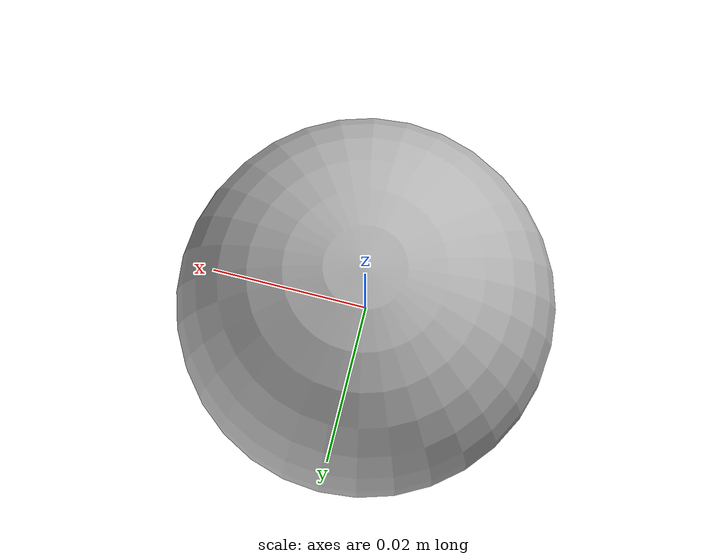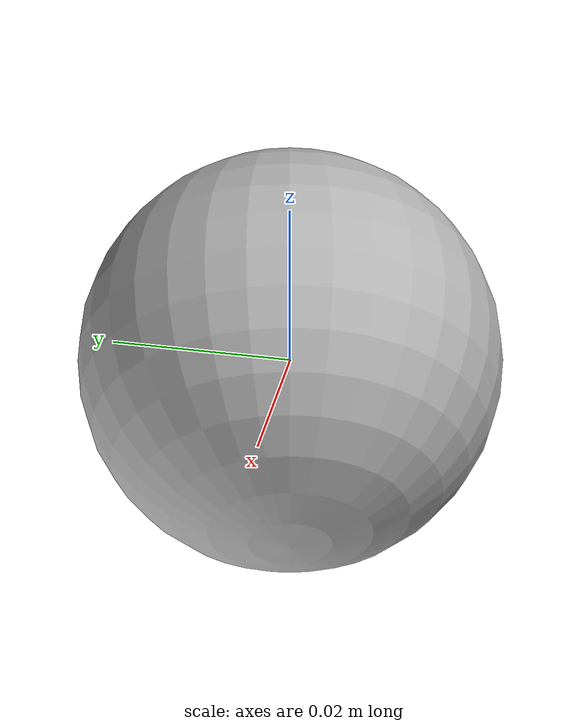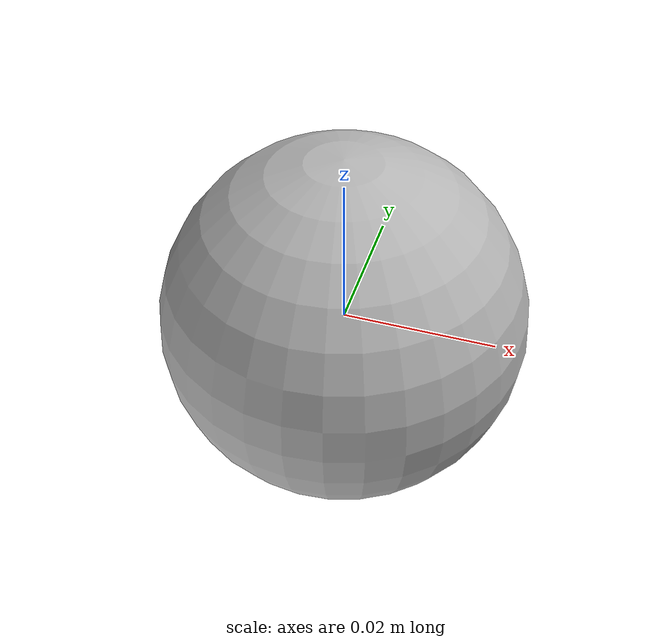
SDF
<?xml version='1.0' ?>
<sdf version='1.6'>
  <model name='Pelota'>
    <static>false</static>
    <link name='link'>
      <collision name='collision'>
        <geometry>
          <mesh>
            <uri>model://pelota/meshes/collision/pelota.stl</uri>
          </mesh>
        </geometry>
      </collision>
      <visual name='visual'>
        <geometry>
          <mesh>
            <uri>model://pelota/meshes/visual/pelota.dae</uri>
          </mesh>
        </geometry>
      </visual>
    </link>
  </model>
</sdf>
